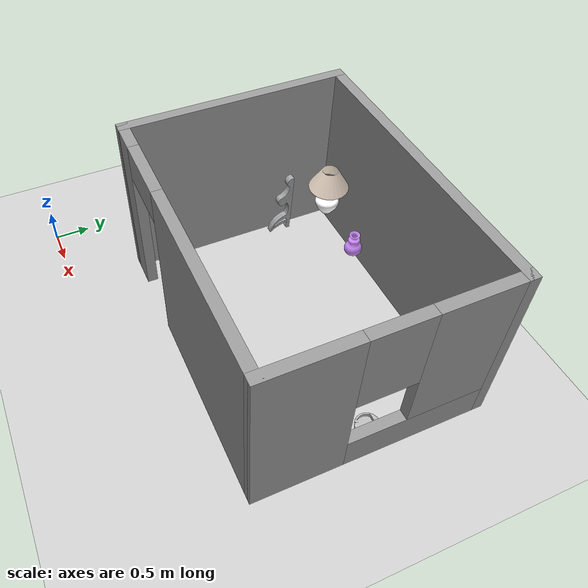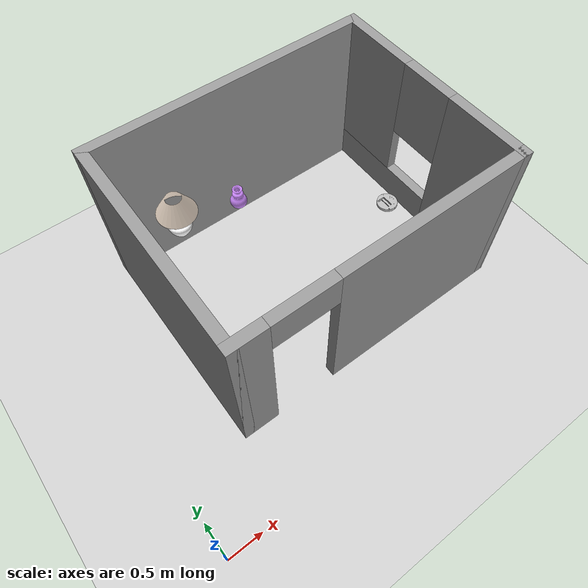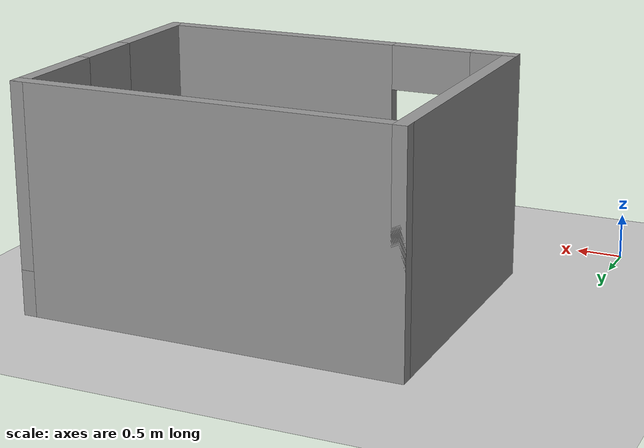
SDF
<sdf version="1.7">
 <world name="default">
  <light name="sun" type="directional">
   <pose>0 0 10 0 -0 0</pose>
   <diffuse>0.8 0.8 0.8 1</diffuse>
   <specular>0.2 0.2 0.2 1</specular>
   <attenuation>
    <range>1000</range>
    <constant>0.9</constant>
    <linear>0.01</linear>
    <quadratic>0.001</quadratic>
   </attenuation>
   <direction>-0.5 0.1 -0.9</direction>
   <spot><inner_angle>0</inner_angle><outer_angle>0</outer_angle><falloff>0</falloff></spot>
  </light>
  <model name="ground_plane">
   <static>1</static>
   <link name="link">
    <collision name="collision">
     <geometry><plane><normal>0 0 1</normal><size>100 100</size></plane></geometry>
     <surface><friction><ode><mu>100</mu><mu2>50</mu2></ode></friction></surface>
    </collision>
    <visual name="visual">
     <cast_shadows>0</cast_shadows>
     <geometry><plane><normal>0 0 1</normal><size>100 100</size></plane></geometry>
     <material>
      <script><uri>file://media/materials/scripts/gazebo.material</uri><name>Gazebo/Grey</name></script>
     </material>
    </visual>
   </link>
  </model>
  <gravity>0 0 -9.8</gravity>
  <magnetic_field>6e-06 2.3e-05 -4.2e-05</magnetic_field>
  <atmosphere type="adiabatic"/>
  <physics type="ode">
   <max_step_size>0.001</max_step_size>
   <real_time_factor>1</real_time_factor>
   <real_time_update_rate>1000</real_time_update_rate>
  </physics>
  <scene><ambient>0.4 0.4 0.4 1</ambient><background>0.7 0.7 0.7 1</background><shadows>1</shadows></scene>
  <spherical_coordinates>
   <surface_model>EARTH_WGS84</surface_model>
   <latitude_deg>0</latitude_deg>
   <longitude_deg>0</longitude_deg>
   <elevation>0</elevation>
   <heading_deg>0</heading_deg>
  </spherical_coordinates>
  <model name="room">
   <pose>3.08377 4.62534 0 0 -0 0</pose>
   <link name="Wall_10">
    <pose>-0 -3.51732 0 0 -0 0</pose>
    <visual name="Wall_10_Visual_0">
     <pose>-1.8675 0 1.25 0 -0 0</pose>
     <geometry><box><size>0.515 0.15 2.5</size></box></geometry>
     <material>
      <script><uri>file://media/materials/scripts/gazebo.material</uri><name>Gazebo/Grey</name></script>
      <ambient>1 1 1 1</ambient>
     </material>
     <meta><layer>0</layer></meta>
    </visual>
    <collision name="Wall_10_Collision_0">
     <geometry><box><size>0.515 0.15 2.5</size></box></geometry>
     <pose>-1.8675 0 1.25 0 -0 0</pose>
    </collision>
    <visual name="Wall_10_Visual_1">
     <pose>0.7075 0 1.25 0 -0 0</pose>
     <geometry><box><size>2.835 0.15 2.5</size></box></geometry>
     <material>
      <script><uri>file://media/materials/scripts/gazebo.material</uri><name>Gazebo/Grey</name></script>
      <ambient>1 1 1 1</ambient>
     </material>
     <meta><layer>0</layer></meta>
    </visual>
    <collision name="Wall_10_Collision_1">
     <geometry><box><size>2.835 0.15 2.5</size></box></geometry>
     <pose>0.7075 0 1.25 0 -0 0</pose>
    </collision>
    <visual name="Wall_10_Visual_2">
     <pose>-1.16 0 2.25 0 -0 0</pose>
     <geometry><box><size>0.9 0.15 0.5</size></box></geometry>
     <material>
      <script><uri>file://media/materials/scripts/gazebo.material</uri><name>Gazebo/Grey</name></script>
      <ambient>1 1 1 1</ambient>
     </material>
     <meta><layer>0</layer></meta>
    </visual>
    <collision name="Wall_10_Collision_2">
     <geometry><box><size>0.9 0.15 0.5</size></box></geometry>
     <pose>-1.16 0 2.25 0 -0 0</pose>
    </collision>
   </link>
   <link name="Wall_11">
    <pose>2.05 -1.96732 0 0 -0 1.5708</pose>
    <visual name="Wall_11_Visual_0">
     <pose>-1.0075 0 1.25 0 -0 0</pose>
     <geometry><box><size>1.235 0.15 2.5</size></box></geometry>
     <material>
      <script><uri>file://media/materials/scripts/gazebo.material</uri><name>Gazebo/Grey</name></script>
      <ambient>1 1 1 1</ambient>
     </material>
     <meta><layer>0</layer></meta>
    </visual>
    <collision name="Wall_11_Collision_0">
     <geometry><box><size>1.235 0.15 2.5</size></box></geometry>
     <pose>-1.0075 0 1.25 0 -0 0</pose>
    </collision>
    <visual name="Wall_11_Visual_1">
     <pose>0.6175 0 0.25 0 -0 0</pose>
     <geometry><box><size>2.015 0.15 0.5</size></box></geometry>
     <material>
      <script><uri>file://media/materials/scripts/gazebo.material</uri><name>Gazebo/Grey</name></script>
      <ambient>1 1 1 1</ambient>
     </material>
     <meta><layer>0</layer></meta>
    </visual>
    <collision name="Wall_11_Collision_1">
     <geometry><box><size>2.015 0.15 0.5</size></box></geometry>
     <pose>0.6175 0 0.25 0 -0 0</pose>
    </collision>
    <visual name="Wall_11_Visual_2">
     <pose>1.0175 0 1.5 0 -0 0</pose>
     <geometry><box><size>1.215 0.15 2</size></box></geometry>
     <material>
      <script><uri>file://media/materials/scripts/gazebo.material</uri><name>Gazebo/Grey</name></script>
      <ambient>1 1 1 1</ambient>
     </material>
     <meta><layer>0</layer></meta>
    </visual>
    <collision name="Wall_11_Collision_2">
     <geometry><box><size>1.215 0.15 2</size></box></geometry>
     <pose>1.0175 0 1.5 0 -0 0</pose>
    </collision>
    <visual name="Wall_11_Visual_3">
     <pose>0.01 0 1.9 0 -0 0</pose>
     <geometry><box><size>0.8 0.15 1.2</size></box></geometry>
     <material>
      <script><uri>file://media/materials/scripts/gazebo.material</uri><name>Gazebo/Grey</name></script>
      <ambient>1 1 1 1</ambient>
     </material>
     <meta><layer>0</layer></meta>
    </visual>
    <collision name="Wall_11_Collision_3">
     <geometry><box><size>0.8 0.15 1.2</size></box></geometry>
     <pose>0.01 0 1.9 0 -0 0</pose>
    </collision>
   </link>
   <link name="Wall_12">
    <collision name="Wall_12_Collision">
     <geometry><box><size>4.25 0.15 2.5</size></box></geometry>
     <pose>0 0 1.25 0 -0 0</pose>
    </collision>
    <visual name="Wall_12_Visual">
     <pose>0 0 1.25 0 -0 0</pose>
     <geometry><box><size>4.25 0.15 2.5</size></box></geometry>
     <material>
      <script><uri>file://media/materials/scripts/gazebo.material</uri><name>Gazebo/Grey</name></script>
      <ambient>1 1 1 1</ambient>
     </material>
     <meta><layer>0</layer></meta>
    </visual>
    <pose>-0 -0.417325 0 0 -0 3.14159</pose>
   </link>
   <link name="Wall_9">
    <collision name="Wall_9_Collision">
     <geometry><box><size>3.25 0.15 2.5</size></box></geometry>
     <pose>0 0 1.25 0 -0 0</pose>
    </collision>
    <visual name="Wall_9_Visual">
     <pose>0 0 1.25 0 -0 0</pose>
     <geometry><box><size>3.25 0.15 2.5</size></box></geometry>
     <material>
      <script><uri>file://media/materials/scripts/gazebo.material</uri><name>Gazebo/Grey</name></script>
      <ambient>1 1 1 1</ambient>
     </material>
     <meta><layer>0</layer></meta>
    </visual>
    <pose>-2.05 -1.96732 0 0 -0 -1.5708</pose>
   </link>
   <static>1</static>
  </model>
  <model name="figurine_1">
   <link name="link_0">
    <visual name="visual">
     <geometry><mesh><uri>model://figurine_1/meshes/venus.dae</uri><scale>1 1 1</scale></mesh></geometry>
     <material>
      <script>
       <uri>model://figurine_1/materials/scripts</uri>
       <uri>model://figurine_1/materials/textures</uri>
       <name>venus</name>
      </script>
     </material>
    </visual>
    <collision name="collision">
     <geometry><mesh><uri>model://figurine_1/meshes/venus.dae</uri><scale>1 1 1</scale></mesh></geometry>
    </collision>
   </link>
   <static>1</static>
   <pose>1.22382 3.33417 0 0 -0 1.57</pose>
  </model>
  <model name="lamp_table_large">
   <link name="link_20">
    <pose>-0.009128 0.000859 0 0 -0 0</pose>
    <visual name="visual">
     <geometry><mesh><uri>model://lamp_table_large/meshes/lamp_base.dae</uri><scale>1 1 1</scale></mesh></geometry>
     <material>
      <lighting>1</lighting>
      <ambient>1 1 1 1</ambient>
      <diffuse>1 1 1 1</diffuse>
      <specular>0.01 0.01 0.01 1</specular>
      <emissive>0 0 0 1</emissive>
     </material>
    </visual>
    <collision name="collision">
     <geometry><mesh><uri>model://lamp_table_large/meshes/lamp_base.dae</uri><scale>1 1 1</scale></mesh></geometry>
    </collision>
   </link>
   <link name="link_21">
    <pose>0.009129 -0.000859 0 0 -0 0</pose>
    <visual name="visual">
     <geometry><mesh><uri>model://lamp_table_large/meshes/lamp_head.dae</uri><scale>1 1 1</scale></mesh></geometry>
     <material>
      <lighting>1</lighting>
      <ambient>0.9568 0.8862 0.8156 1</ambient>
      <diffuse>0.9568 0.8862 0.8156 1</diffuse>
      <specular>0.01 0.01 0.01 1</specular>
      <emissive>0 0 0 1</emissive>
     </material>
    </visual>
    <collision name="collision">
     <geometry><mesh><uri>model://lamp_table_large/meshes/lamp_head.dae</uri><scale>1 1 1</scale></mesh></geometry>
    </collision>
   </link>
   <static>1</static>
   <pose>1.83031 3.69466 0.726133 0 -0 0</pose>
  </model>
  <model name="vase_violet">
   <link name="link_34">
    <pose>0 0 -0.149567 0 -0 0</pose>
    <visual name="visual">
     <geometry><mesh><uri>model://vase_violet/meshes/vase5.dae</uri><scale>1 1 1</scale></mesh></geometry>
     <material>
      <lighting>1</lighting>
      <ambient>0.788 0.525 0.972 1</ambient>
      <diffuse>0.788 0.525 0.972 1</diffuse>
      <specular>0.01 0.01 0.01 1</specular>
      <emissive>0 0 0 1</emissive>
      <shader type="vertex"><normal_map>__default__</normal_map></shader>
     </material>
    </visual>
    <collision name="collision">
     <geometry><mesh><uri>model://vase_violet/meshes/vase5.dae</uri><scale>1 1 1</scale></mesh></geometry>
    </collision>
   </link>
   <static>1</static>
   <pose>2.72842 3.70647 0.720582 0 -0 0</pose>
  </model>
  <model name="create">
   <link name="base">
    <inertial>
     <pose>0.001453 -0.000453 0.029787 0 -0 0</pose>
     <inertia>
      <ixx>0.05864</ixx>
      <ixy>0.000124</ixy>
      <ixz>0.000615</ixz>
      <iyy>0.058786</iyy>
      <iyz>1.4e-05</iyz>
      <izz>1.53244</izz>
     </inertia>
     <mass>2.234</mass>
    </inertial>
    <collision name="base_collision">
     <pose>0 0 0.0478 0 -0 0</pose>
     <geometry><cylinder><radius>0.016495</radius><length>0.061163</length></cylinder></geometry>
    </collision>
    <visual name="base_visual">
     <pose>0 0 0.0478 0 -0 0</pose>
     <geometry><mesh><uri>model://create/meshes/create_body.dae</uri></mesh></geometry>
    </visual>
    <collision name="front_wheel_collision">
     <pose>0.13 0 0.017 -0 1.5707 1.5707</pose>
     <geometry><sphere><radius>0.018</radius></sphere></geometry>
     <surface>
      <friction><ode><mu>0</mu><mu2>0</mu2><fdir1>0 0 0</fdir1><slip1>0</slip1><slip2>0</slip2></ode></friction>
     </surface>
    </collision>
    <visual name="front_wheel_visual">
     <pose>0.13 0 0.017 -0 1.5707 1.5707</pose>
     <geometry><sphere><radius>0.009</radius></sphere></geometry>
    </visual>
    <collision name="rear_wheel_collision">
     <pose>-0.13 0 0.017 -0 1.5707 1.5707</pose>
     <geometry><sphere><radius>0.015</radius></sphere></geometry>
     <surface>
      <friction><ode><mu>0</mu><mu2>0</mu2><fdir1>0 0 0</fdir1><slip1>0</slip1><slip2>0</slip2></ode></friction>
     </surface>
    </collision>
    <visual name="rear_wheel_visual">
     <pose>-0.13 0 0.017 -0 1.5707 1.5707</pose>
     <geometry><sphere><radius>0.0075</radius></sphere></geometry>
    </visual>
    <sensor name="left_cliff_sensor" type="ray">
     <pose>0.07 0.14 0.027 0 1.57079 0</pose>
     <ray>
      <scan>
       <horizontal>
        <samples>1</samples>
        <resolution>1</resolution>
        <min_angle>0</min_angle>
        <max_angle>0</max_angle>
       </horizontal>
       <vertical><samples>1</samples><min_angle>0</min_angle><max_angle>0</max_angle></vertical>
      </scan>
      <range><min>0.01</min><max>0.04</max><resolution>0.1</resolution></range>
     </ray>
    </sensor>
    <sensor name="leftfront_cliff_sensor" type="ray">
     <pose>0.15 0.04 0.027 0 1.57079 0</pose>
     <ray>
      <scan>
       <horizontal>
        <samples>1</samples>
        <resolution>1</resolution>
        <min_angle>0</min_angle>
        <max_angle>0</max_angle>
       </horizontal>
       <vertical><samples>1</samples><min_angle>0</min_angle><max_angle>0</max_angle></vertical>
      </scan>
      <range><min>0.01</min><max>0.04</max><resolution>0.1</resolution></range>
     </ray>
    </sensor>
    <sensor name="right_cliff_sensor" type="ray">
     <pose>0.07 -0.14 0.027 0 1.57079 0</pose>
     <ray>
      <scan>
       <horizontal>
        <samples>1</samples>
        <resolution>1</resolution>
        <min_angle>0</min_angle>
        <max_angle>0</max_angle>
       </horizontal>
       <vertical><samples>1</samples><min_angle>0</min_angle><max_angle>0</max_angle></vertical>
      </scan>
      <range><min>0.01</min><max>0.04</max><resolution>0.1</resolution></range>
     </ray>
    </sensor>
    <sensor name="rightfront_cliff_sensor" type="ray">
     <pose>0.15 -0.04 0.027 0 1.57079 0</pose>
     <ray>
      <scan>
       <horizontal>
        <samples>1</samples>
        <resolution>1</resolution>
        <min_angle>0</min_angle>
        <max_angle>0</max_angle>
       </horizontal>
       <vertical><samples>1</samples><min_angle>0</min_angle><max_angle>0</max_angle></vertical>
      </scan>
      <range><min>0.01</min><max>0.04</max><resolution>0.1</resolution></range>
     </ray>
    </sensor>
    <sensor name="wall_sensor" type="ray">
     <pose>0.09 -0.12 0.059 0 0 -1</pose>
     <ray>
      <scan>
       <horizontal>
        <samples>1</samples>
        <resolution>1</resolution>
        <min_angle>0</min_angle>
        <max_angle>0</max_angle>
       </horizontal>
       <vertical><samples>1</samples><min_angle>0</min_angle><max_angle>0</max_angle></vertical>
      </scan>
      <range><min>0.016</min><max>0.04</max><resolution>0.1</resolution></range>
     </ray>
    </sensor>
   </link>
   <link name="left_wheel">
    <pose>0 0.13 0.032 0 -0 0</pose>
    <inertial>
     <inertia><ixx>0.001</ixx><ixy>0</ixy><ixz>0</ixz><iyy>0.001</iyy><iyz>0</iyz><izz>0.001</izz></inertia>
     <mass>0.01</mass>
    </inertial>
    <collision name="collision">
     <pose>0 0 0 -0 1.5707 1.5707</pose>
     <geometry><cylinder><radius>0.033</radius><length>0.023</length></cylinder></geometry>
     <surface>
      <friction><ode><mu>10</mu><mu2>10</mu2><fdir1>0 0 0</fdir1><slip1>0</slip1><slip2>0</slip2></ode></friction>
     </surface>
    </collision>
    <visual name="visual">
     <pose>0 0 0 -0 1.5707 1.5707</pose>
     <geometry><cylinder><radius>0.033</radius><length>0.023</length></cylinder></geometry>
    </visual>
   </link>
   <link name="right_wheel">
    <pose>0 -0.13 0.032 0 -0 0</pose>
    <inertial>
     <inertia><ixx>0.001</ixx><ixy>0</ixy><ixz>0</ixz><iyy>0.001</iyy><iyz>0</iyz><izz>0.001</izz></inertia>
     <mass>0.01</mass>
    </inertial>
    <collision name="collision">
     <pose>0 0 0 -0 1.5707 1.5707</pose>
     <geometry><cylinder><radius>0.033</radius><length>0.023</length></cylinder></geometry>
     <surface>
      <friction><ode><mu>10</mu><mu2>10</mu2><fdir1>0 0 0</fdir1><slip1>0</slip1><slip2>0</slip2></ode></friction>
     </surface>
    </collision>
    <visual name="visual">
     <pose>0 0 0 -0 1.5707 1.5707</pose>
     <geometry><cylinder><radius>0.033</radius><length>0.023</length></cylinder></geometry>
    </visual>
   </link>
   <joint name="left_wheel" type="revolute">
    <parent>base</parent>
    <child>left_wheel</child>
    <axis>
     <xyz expressed_in="__model__">0 1 0</xyz>
     <limit><lower>-1e+16</lower><upper>1e+16</upper></limit>
     <dynamics><spring_reference>0</spring_reference><spring_stiffness>0</spring_stiffness></dynamics>
    </axis>
   </joint>
   <joint name="right_wheel" type="revolute">
    <parent>base</parent>
    <child>right_wheel</child>
    <axis>
     <xyz expressed_in="__model__">0 1 0</xyz>
     <limit><lower>-1e+16</lower><upper>1e+16</upper></limit>
     <dynamics><spring_reference>0</spring_reference><spring_stiffness>0</spring_stiffness></dynamics>
    </axis>
   </joint>
   <pose>4.88342 2.78981 0.000937 -4e-05 -0.000524 -0.004906</pose>
  </model>
 </world>
</sdf>
